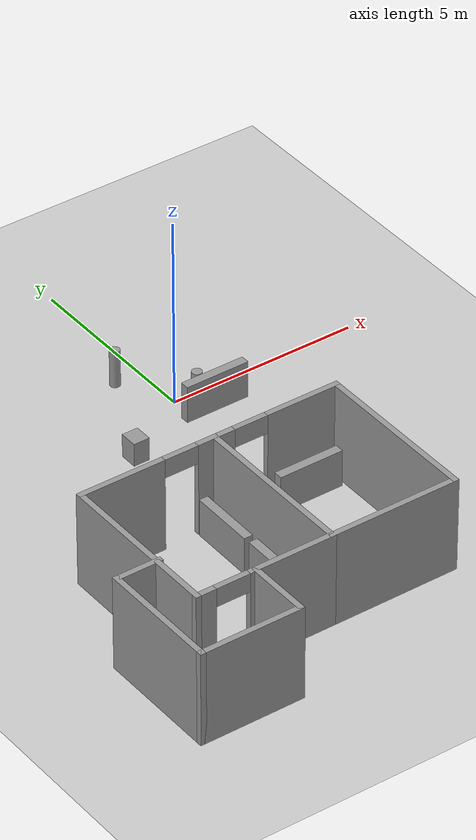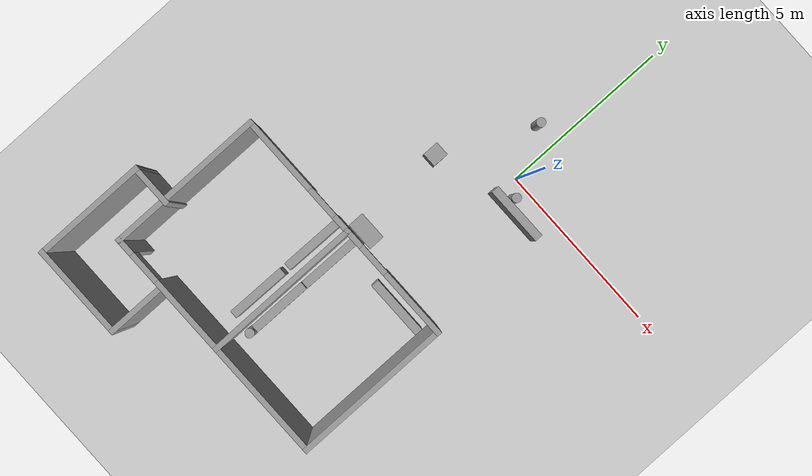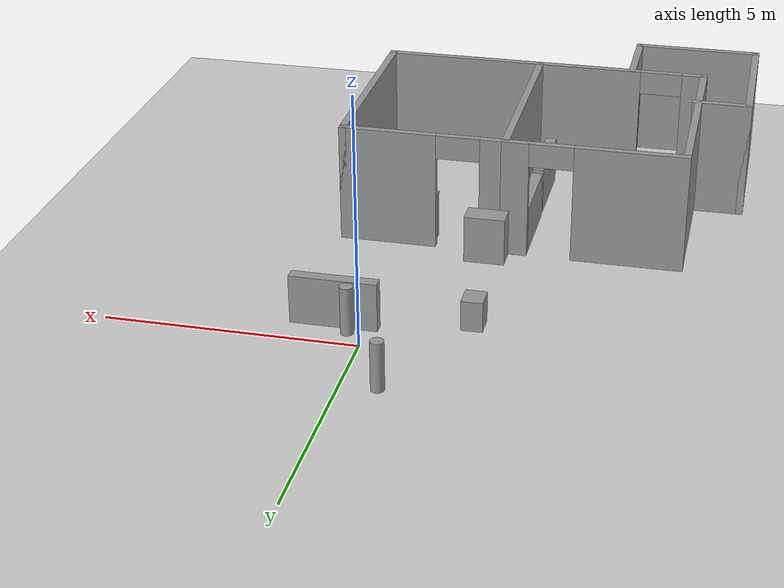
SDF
<sdf version="1.9">
 <world name="default">
  <model name="ground_plane">
   <static>true</static>
   <link name="link">
    <collision name="collision">
     <geometry><plane><normal>0 0 1</normal><size>100 100</size></plane></geometry>
     <surface><friction><ode><mu>100</mu><mu2>50</mu2></ode></friction></surface>
    </collision>
    <visual name="visual">
     <cast_shadows>false</cast_shadows>
     <geometry><plane><normal>0 0 1</normal><size>100 100</size></plane></geometry>
     <material>
      <script><uri>file://media/materials/scripts/gazebo.material</uri><name>Gazebo/Grey</name></script>
     </material>
    </visual>
   </link>
  </model>
  <model name="cma_quartos">
   <pose>-2.58169 -7.2645600000000004 0 0 0 0</pose>
   <link name="Wall_0">
    <collision name="Wall_0_Collision">
     <geometry><box><size>4.5 0.14999999999999999 2.5</size></box></geometry>
     <pose>0 0 1.25 0 0 0</pose>
    </collision>
    <visual name="Wall_0_Visual">
     <pose>0 0 1.25 0 0 0</pose>
     <geometry><box><size>4.5 0.14999999999999999 2.5</size></box></geometry>
     <material>
      <script><uri>file://media/materials/scripts/gazebo.material</uri><name>Gazebo/Grey</name></script>
      <ambient>1 1 1 1</ambient>
     </material>
    </visual>
    <pose>0.64500000000000002 0.81000000000000005 0 0 0 -1.5708</pose>
   </link>
   <link name="Wall_1">
    <pose>-1.155 -1.365 0 0 0 3.1415899999999999</pose>
    <visual name="Wall_1_Visual_0">
     <pose>-0.72250000000000003 0 1.25 0 0 0</pose>
     <geometry><box><size>2.3050000000000002 0.14999999999999999 2.5</size></box></geometry>
     <material>
      <script><uri>file://media/materials/scripts/gazebo.material</uri><name>Gazebo/Grey</name></script>
      <ambient>1 1 1 1</ambient>
     </material>
    </visual>
    <collision name="Wall_1_Collision_0">
     <geometry><box><size>2.3050000000000002 0.14999999999999999 2.5</size></box></geometry>
     <pose>-0.72250000000000003 0 1.25 0 0 0</pose>
    </collision>
    <visual name="Wall_1_Visual_1">
     <pose>1.6025 0 1.25 0 0 0</pose>
     <geometry><box><size>0.54500000000000004 0.14999999999999999 2.5</size></box></geometry>
     <material>
      <script><uri>file://media/materials/scripts/gazebo.material</uri><name>Gazebo/Grey</name></script>
      <ambient>1 1 1 1</ambient>
     </material>
    </visual>
    <collision name="Wall_1_Collision_1">
     <geometry><box><size>0.54500000000000004 0.14999999999999999 2.5</size></box></geometry>
     <pose>1.6025 0 1.25 0 0 0</pose>
    </collision>
    <visual name="Wall_1_Visual_2">
     <pose>0.88 0 2.25 0 0 0</pose>
     <geometry><box><size>0.90000000000000002 0.14999999999999999 0.5</size></box></geometry>
     <material>
      <script><uri>file://media/materials/scripts/gazebo.material</uri><name>Gazebo/Grey</name></script>
      <ambient>1 1 1 1</ambient>
     </material>
    </visual>
    <collision name="Wall_1_Collision_2">
     <geometry><box><size>0.90000000000000002 0.14999999999999999 0.5</size></box></geometry>
     <pose>0.88 0 2.25 0 0 0</pose>
    </collision>
   </link>
   <link name="Wall_10">
    <collision name="Wall_10_Collision">
     <geometry><box><size>1.75 0.14999999999999999 2.5</size></box></geometry>
     <pose>0 0 1.25 0 0 0</pose>
    </collision>
    <visual name="Wall_10_Visual">
     <pose>0 0 1.25 0 0 0</pose>
     <geometry><box><size>1.75 0.14999999999999999 2.5</size></box></geometry>
     <material>
      <script><uri>file://media/materials/scripts/gazebo.material</uri><name>Gazebo/Grey</name></script>
      <ambient>1 1 1 1</ambient>
     </material>
    </visual>
    <pose>-1.395 -2.1850000000000001 0 0 0 -1.5708</pose>
   </link>
   <link name="Wall_11">
    <collision name="Wall_11_Collision">
     <geometry><box><size>2.75 0.14999999999999999 2.5</size></box></geometry>
     <pose>0 0 1.25 0 0 0</pose>
    </collision>
    <visual name="Wall_11_Visual">
     <pose>0 0 1.25 0 0 0</pose>
     <geometry><box><size>2.75 0.14999999999999999 2.5</size></box></geometry>
     <material>
      <script><uri>file://media/materials/scripts/gazebo.material</uri><name>Gazebo/Grey</name></script>
      <ambient>1 1 1 1</ambient>
     </material>
    </visual>
    <pose>-2.6949999999999998 -2.9849999999999999 0 0 0 3.1415899999999999</pose>
   </link>
   <link name="Wall_12">
    <collision name="Wall_12_Collision">
     <geometry><box><size>3.25 0.14999999999999999 2.5</size></box></geometry>
     <pose>0 0 1.25 0 0 0</pose>
    </collision>
    <visual name="Wall_12_Visual">
     <pose>0 0 1.25 0 0 0</pose>
     <geometry><box><size>3.25 0.14999999999999999 2.5</size></box></geometry>
     <material>
      <script><uri>file://media/materials/scripts/gazebo.material</uri><name>Gazebo/Grey</name></script>
      <ambient>1 1 1 1</ambient>
     </material>
    </visual>
    <pose>-3.9950000000000001 -1.4350000000000001 0 0 0 1.5708</pose>
   </link>
   <link name="Wall_13">
    <collision name="Wall_13_Collision">
     <geometry><box><size>1.25 0.14999999999999999 2.5</size></box></geometry>
     <pose>0 0 1.25 0 0 0</pose>
    </collision>
    <visual name="Wall_13_Visual">
     <pose>0 0 1.25 0 0 0</pose>
     <geometry><box><size>1.25 0.14999999999999999 2.5</size></box></geometry>
     <material>
      <script><uri>file://media/materials/scripts/gazebo.material</uri><name>Gazebo/Grey</name></script>
      <ambient>1 1 1 1</ambient>
     </material>
    </visual>
    <pose>-3.4449999999999998 0.115 0 0 0 0</pose>
   </link>
   <link name="Wall_2">
    <collision name="Wall_2_Collision">
     <geometry><box><size>4.5 0.14999999999999999 2.5</size></box></geometry>
     <pose>0 0 1.25 0 0 0</pose>
    </collision>
    <visual name="Wall_2_Visual">
     <pose>0 0 1.25 0 0 0</pose>
     <geometry><box><size>4.5 0.14999999999999999 2.5</size></box></geometry>
     <material>
      <script><uri>file://media/materials/scripts/gazebo.material</uri><name>Gazebo/Grey</name></script>
      <ambient>1 1 1 1</ambient>
     </material>
    </visual>
    <pose>-2.9550000000000001 0.81000000000000005 0 0 0 1.5708</pose>
   </link>
   <link name="Wall_3">
    <pose>-1.155 2.9849999999999999 0 0 0 0</pose>
    <visual name="Wall_3_Visual_0">
     <pose>-0.73250000000000004 0 1.25 0 0 0</pose>
     <geometry><box><size>2.2850000000000001 0.14999999999999999 2.5</size></box></geometry>
     <material>
      <script><uri>file://media/materials/scripts/gazebo.material</uri><name>Gazebo/Grey</name></script>
      <ambient>1 1 1 1</ambient>
     </material>
    </visual>
    <collision name="Wall_3_Collision_0">
     <geometry><box><size>2.2850000000000001 0.14999999999999999 2.5</size></box></geometry>
     <pose>-0.73250000000000004 0 1.25 0 0 0</pose>
    </collision>
    <visual name="Wall_3_Visual_1">
     <pose>1.5925 0 1.25 0 0 0</pose>
     <geometry><box><size>0.56499999999999995 0.14999999999999999 2.5</size></box></geometry>
     <material>
      <script><uri>file://media/materials/scripts/gazebo.material</uri><name>Gazebo/Grey</name></script>
      <ambient>1 1 1 1</ambient>
     </material>
    </visual>
    <collision name="Wall_3_Collision_1">
     <geometry><box><size>0.56499999999999995 0.14999999999999999 2.5</size></box></geometry>
     <pose>1.5925 0 1.25 0 0 0</pose>
    </collision>
    <visual name="Wall_3_Visual_2">
     <pose>0.85999999999999999 0 2.25 0 0 0</pose>
     <geometry><box><size>0.90000000000000002 0.14999999999999999 0.5</size></box></geometry>
     <material>
      <script><uri>file://media/materials/scripts/gazebo.material</uri><name>Gazebo/Grey</name></script>
      <ambient>1 1 1 1</ambient>
     </material>
    </visual>
    <collision name="Wall_3_Collision_2">
     <geometry><box><size>0.90000000000000002 0.14999999999999999 0.5</size></box></geometry>
     <pose>0.85999999999999999 0 2.25 0 0 0</pose>
    </collision>
   </link>
   <link name="Wall_6">
    <pose>2.3199999999999998 2.9849999999999999 0 0 0 0</pose>
    <visual name="Wall_6_Visual_0">
     <pose>-1.4575 0 1.25 0 0 0</pose>
     <geometry><box><size>0.58499999999999996 0.14999999999999999 2.5</size></box></geometry>
     <material>
      <script><uri>file://media/materials/scripts/gazebo.material</uri><name>Gazebo/Grey</name></script>
      <ambient>1 1 1 1</ambient>
     </material>
    </visual>
    <collision name="Wall_6_Collision_0">
     <geometry><box><size>0.58499999999999996 0.14999999999999999 2.5</size></box></geometry>
     <pose>-1.4575 0 1.25 0 0 0</pose>
    </collision>
    <visual name="Wall_6_Visual_1">
     <pose>0.74250000000000005 0 1.25 0 0 0</pose>
     <geometry><box><size>2.0150000000000001 0.14999999999999999 2.5</size></box></geometry>
     <material>
      <script><uri>file://media/materials/scripts/gazebo.material</uri><name>Gazebo/Grey</name></script>
      <ambient>1 1 1 1</ambient>
     </material>
    </visual>
    <collision name="Wall_6_Collision_1">
     <geometry><box><size>2.0150000000000001 0.14999999999999999 2.5</size></box></geometry>
     <pose>0.74250000000000005 0 1.25 0 0 0</pose>
    </collision>
    <visual name="Wall_6_Visual_2">
     <pose>-0.71499999999999997 0 2.25 0 0 0</pose>
     <geometry><box><size>0.90000000000000002 0.14999999999999999 0.5</size></box></geometry>
     <material>
      <script><uri>file://media/materials/scripts/gazebo.material</uri><name>Gazebo/Grey</name></script>
      <ambient>1 1 1 1</ambient>
     </material>
    </visual>
    <collision name="Wall_6_Collision_2">
     <geometry><box><size>0.90000000000000002 0.14999999999999999 0.5</size></box></geometry>
     <pose>-0.71499999999999997 0 2.25 0 0 0</pose>
    </collision>
   </link>
   <link name="Wall_7">
    <collision name="Wall_7_Collision">
     <geometry><box><size>4.5 0.14999999999999999 2.5</size></box></geometry>
     <pose>0 0 1.25 0 0 0</pose>
    </collision>
    <visual name="Wall_7_Visual">
     <pose>0 0 1.25 0 0 0</pose>
     <geometry><box><size>4.5 0.14999999999999999 2.5</size></box></geometry>
     <material>
      <script><uri>file://media/materials/scripts/gazebo.material</uri><name>Gazebo/Grey</name></script>
      <ambient>1 1 1 1</ambient>
     </material>
    </visual>
    <pose>3.9950000000000001 0.81000000000000005 0 0 0 -1.5708</pose>
   </link>
   <link name="Wall_8">
    <collision name="Wall_8_Collision">
     <geometry><box><size>3.5 0.14999999999999999 2.5</size></box></geometry>
     <pose>0 0 1.25 0 0 0</pose>
    </collision>
    <visual name="Wall_8_Visual">
     <pose>0 0 1.25 0 0 0</pose>
     <geometry><box><size>3.5 0.14999999999999999 2.5</size></box></geometry>
     <material>
      <script><uri>file://media/materials/scripts/gazebo.material</uri><name>Gazebo/Grey</name></script>
      <ambient>1 1 1 1</ambient>
     </material>
    </visual>
    <pose>2.3199999999999998 -1.365 0 0 0 3.1415899999999999</pose>
   </link>
   <static>true</static>
  </model>
  <model name="cma_armario">
   <link name="link_0">
    <pose>1.3215699999999999 0.88517800000000002 0.5 0 0 0</pose>
    <inertial>
     <mass>0.40237600000000001</mass>
     <inertia>
      <ixx>0.0353686</ixx>
      <ixy>0</ixy>
      <ixz>0</ixz>
      <iyy>0.13261600000000001</iyy>
      <iyz>0</iyz>
      <izz>0.100922</izz>
     </inertia>
    </inertial>
    <visual name="visual">
     <geometry><box><size>1.7187699999999999 0.234069 1</size></box></geometry>
     <material>
      <lighting>true</lighting>
      <script><uri>file://media/materials/scripts/gazebo.material</uri><name>Gazebo/Grey</name></script>
      <ambient>0.300000012 0.300000012 0.300000012 1</ambient>
      <diffuse>0.699999988 0.699999988 0.699999988 1</diffuse>
      <specular>0.00999999978 0.00999999978 0.00999999978 1</specular>
      <emissive>0 0 0 1</emissive>
     </material>
    </visual>
    <collision name="collision">
     <geometry><box><size>1.7187699999999999 0.234069 1</size></box></geometry>
     <surface>
      <friction>
       <ode><mu>1</mu><mu2>1</mu2><fdir1>0 0 0</fdir1><slip1>0</slip1><slip2>0</slip2></ode>
       <torsional>
        <coefficient>1</coefficient>
        <patch_radius>0</patch_radius>
        <surface_radius>0</surface_radius>
        <use_patch_radius>true</use_patch_radius>
        <ode><slip>0</slip></ode>
       </torsional>
      </friction>
      <bounce><restitution_coefficient>0</restitution_coefficient><threshold>1000000</threshold></bounce>
      <contact>
       <collide_without_contact>false</collide_without_contact>
       <collide_without_contact_bitmask>1</collide_without_contact_bitmask>
       <collide_bitmask>1</collide_bitmask>
       <ode>
        <soft_cfm>0</soft_cfm>
        <soft_erp>0.20000000000000001</soft_erp>
        <kp>10000000000000</kp>
        <kd>1</kd>
        <max_vel>0.01</max_vel>
        <min_depth>0</min_depth>
       </ode>
       <bullet>
        <split_impulse>true</split_impulse>
        <split_impulse_penetration_threshold>-0.01</split_impulse_penetration_threshold>
        <soft_cfm>0</soft_cfm>
        <soft_erp>0.20000000000000001</soft_erp>
        <kp>10000000000000</kp>
        <kd>1</kd>
       </bullet>
      </contact>
     </surface>
    </collision>
   </link>
   <static>false</static>
   <pose>-0.66982399999999997 -1.5824100000000001 1.9999999999999999e-06 -2.0000000000000003e-06 1.0339757656912846e-25 0.00063900000000000014</pose>
  </model>
  <model name="cma_lixo">
   <link name="link_1">
    <pose>0.88296200000000002 1.81586 0.5 0 0 0</pose>
    <inertial>
     <mass>0.068764400000000003</mass>
     <inertia>
      <ixx>0.00602588</ixx>
      <ixy>0</ixy>
      <ixz>0</ixz>
      <iyy>0.00602588</iyy>
      <iyz>0</iyz>
      <izz>0.00059106800000000004</izz>
     </inertia>
    </inertial>
    <visual name="visual">
     <geometry><cylinder><radius>0.13111200000000001</radius><length>1</length></cylinder></geometry>
     <material>
      <lighting>true</lighting>
      <script><uri>file://media/materials/scripts/gazebo.material</uri><name>Gazebo/Grey</name></script>
      <ambient>0.300000012 0.300000012 0.300000012 1</ambient>
      <diffuse>0.699999988 0.699999988 0.699999988 1</diffuse>
      <specular>0.00999999978 0.00999999978 0.00999999978 1</specular>
      <emissive>0 0 0 1</emissive>
     </material>
    </visual>
    <collision name="collision">
     <geometry><cylinder><radius>0.13111200000000001</radius><length>1</length></cylinder></geometry>
     <surface>
      <friction>
       <ode><mu>1</mu><mu2>1</mu2><fdir1>0 0 0</fdir1><slip1>0</slip1><slip2>0</slip2></ode>
       <torsional>
        <coefficient>1</coefficient>
        <patch_radius>0</patch_radius>
        <surface_radius>0</surface_radius>
        <use_patch_radius>true</use_patch_radius>
        <ode><slip>0</slip></ode>
       </torsional>
      </friction>
      <bounce><restitution_coefficient>0</restitution_coefficient><threshold>1000000</threshold></bounce>
      <contact>
       <collide_without_contact>false</collide_without_contact>
       <collide_without_contact_bitmask>1</collide_without_contact_bitmask>
       <collide_bitmask>1</collide_bitmask>
       <ode>
        <soft_cfm>0</soft_cfm>
        <soft_erp>0.20000000000000001</soft_erp>
        <kp>10000000000000</kp>
        <kd>1</kd>
        <max_vel>0.01</max_vel>
        <min_depth>0</min_depth>
       </ode>
       <bullet>
        <split_impulse>true</split_impulse>
        <split_impulse_penetration_threshold>-0.01</split_impulse_penetration_threshold>
        <soft_cfm>0</soft_cfm>
        <soft_erp>0.20000000000000001</soft_erp>
        <kp>10000000000000</kp>
        <kd>1</kd>
       </bullet>
      </contact>
     </surface>
    </collision>
   </link>
   <static>false</static>
   <pose>-1.35785 -1.5254399999999999 -5.0000000000000004e-06 0 0 -0.54309700000000016</pose>
  </model>
  <model name="cma_lixo_0">
   <link name="link_1">
    <pose>0.88296200000000002 1.81586 0.5 0 0 0</pose>
    <inertial>
     <mass>0.068764400000000003</mass>
     <inertia>
      <ixx>0.00602588</ixx>
      <ixy>0</ixy>
      <ixz>0</ixz>
      <iyy>0.00602588</iyy>
      <iyz>0</iyz>
      <izz>0.00059106800000000004</izz>
     </inertia>
    </inertial>
    <visual name="visual">
     <geometry><cylinder><radius>0.13111200000000001</radius><length>1</length></cylinder></geometry>
     <material>
      <lighting>true</lighting>
      <script><uri>file://media/materials/scripts/gazebo.material</uri><name>Gazebo/Grey</name></script>
      <ambient>0.300000012 0.300000012 0.300000012 1</ambient>
      <diffuse>0.699999988 0.699999988 0.699999988 1</diffuse>
      <specular>0.00999999978 0.00999999978 0.00999999978 1</specular>
      <emissive>0 0 0 1</emissive>
     </material>
    </visual>
    <collision name="collision">
     <geometry><cylinder><radius>0.13111200000000001</radius><length>1</length></cylinder></geometry>
     <surface>
      <friction>
       <ode><mu>1</mu><mu2>1</mu2><fdir1>0 0 0</fdir1><slip1>0</slip1><slip2>0</slip2></ode>
       <torsional>
        <coefficient>1</coefficient>
        <patch_radius>0</patch_radius>
        <surface_radius>0</surface_radius>
        <use_patch_radius>true</use_patch_radius>
        <ode><slip>0</slip></ode>
       </torsional>
      </friction>
      <bounce><restitution_coefficient>0</restitution_coefficient><threshold>1000000</threshold></bounce>
      <contact>
       <collide_without_contact>false</collide_without_contact>
       <collide_without_contact_bitmask>1</collide_without_contact_bitmask>
       <collide_bitmask>1</collide_bitmask>
       <ode>
        <soft_cfm>0</soft_cfm>
        <soft_erp>0.20000000000000001</soft_erp>
        <kp>10000000000000</kp>
        <kd>1</kd>
        <max_vel>0.01</max_vel>
        <min_depth>0</min_depth>
       </ode>
       <bullet>
        <split_impulse>true</split_impulse>
        <split_impulse_penetration_threshold>-0.01</split_impulse_penetration_threshold>
        <soft_cfm>0</soft_cfm>
        <soft_erp>0.20000000000000001</soft_erp>
        <kp>10000000000000</kp>
        <kd>1</kd>
       </bullet>
      </contact>
     </surface>
    </collision>
   </link>
   <static>false</static>
   <pose>-1.6093500000000001 -0.44273099999999999 -9.0000000000000002e-06 0 0 -0.0097769999999999992</pose>
  </model>
  <model name="cma_bau_s">
   <link name="link_1">
    <pose>0.109594 0.27229300000000001 0 0 0 0</pose>
    <inertial>
     <mass>0.12547900000000001</mass>
     <inertia>
      <ixx>0.0064194300000000003</ixx>
      <ixy>0</ixy>
      <ixz>0</ixz>
      <iyy>0.0059753999999999996</iyy>
      <iyz>0</iyz>
      <izz>0.0042208499999999999</izz>
     </inertia>
    </inertial>
    <visual name="visual">
     <geometry><box><size>0.42496400000000001 0.47228300000000001 0.62511799999999995</size></box></geometry>
     <material>
      <lighting>true</lighting>
      <script><uri>file://media/materials/scripts/gazebo.material</uri><name>Gazebo/Grey</name></script>
      <ambient>0.300000012 0.300000012 0.300000012 1</ambient>
      <diffuse>0.699999988 0.699999988 0.699999988 1</diffuse>
      <specular>0.00999999978 0.00999999978 0.00999999978 1</specular>
      <emissive>0 0 0 1</emissive>
     </material>
    </visual>
    <collision name="collision">
     <geometry><box><size>0.42496400000000001 0.47228300000000001 0.62511799999999995</size></box></geometry>
     <surface>
      <friction>
       <ode><mu>1</mu><mu2>1</mu2><fdir1>0 0 0</fdir1><slip1>0</slip1><slip2>0</slip2></ode>
       <torsional>
        <coefficient>1</coefficient>
        <patch_radius>0</patch_radius>
        <surface_radius>0</surface_radius>
        <use_patch_radius>true</use_patch_radius>
        <ode><slip>0</slip></ode>
       </torsional>
      </friction>
      <bounce><restitution_coefficient>0</restitution_coefficient><threshold>1000000</threshold></bounce>
      <contact>
       <collide_without_contact>false</collide_without_contact>
       <collide_without_contact_bitmask>1</collide_without_contact_bitmask>
       <collide_bitmask>1</collide_bitmask>
       <ode>
        <soft_cfm>0</soft_cfm>
        <soft_erp>0.20000000000000001</soft_erp>
        <kp>10000000000000</kp>
        <kd>1</kd>
        <max_vel>0.01</max_vel>
        <min_depth>0</min_depth>
       </ode>
       <bullet>
        <split_impulse>true</split_impulse>
        <split_impulse_penetration_threshold>-0.01</split_impulse_penetration_threshold>
        <soft_cfm>0</soft_cfm>
        <soft_erp>0.20000000000000001</soft_erp>
        <kp>10000000000000</kp>
        <kd>1</kd>
       </bullet>
      </contact>
     </surface>
    </collision>
   </link>
   <static>false</static>
   <pose>-2.0428899999999999 -1.4857199999999999 0.31256 -3.9999999999999998e-06 1.2000000000000002e-05 0.00025799999999999993</pose>
  </model>
  <model name="cma_armario_s">
   <link name="link_1">
    <pose>-1.9999999999999999e-06 -3.0000000000000001e-06 0 0 0 0</pose>
    <inertial>
     <mass>0.39015899999999998</mass>
     <inertia>
      <ixx>0.039647000000000002</ixx>
      <ixy>0</ixy>
      <ixz>0</ixz>
      <iyy>0.055070800000000003</iyy>
      <iyz>0</iyz>
      <izz>0.029691200000000001</izz>
     </inertia>
    </inertial>
    <visual name="visual">
     <geometry><box><size>0.83294199999999996 0.46839700000000001 1</size></box></geometry>
     <material>
      <lighting>true</lighting>
      <script><uri>file://media/materials/scripts/gazebo.material</uri><name>Gazebo/Grey</name></script>
      <ambient>0.300000012 0.300000012 0.300000012 1</ambient>
      <diffuse>0.699999988 0.699999988 0.699999988 1</diffuse>
      <specular>0.00999999978 0.00999999978 0.00999999978 1</specular>
      <emissive>0 0 0 1</emissive>
     </material>
    </visual>
    <collision name="collision">
     <geometry><box><size>0.83294199999999996 0.46839700000000001 1</size></box></geometry>
     <surface>
      <friction>
       <ode><mu>1</mu><mu2>1</mu2><fdir1>0 0 0</fdir1><slip1>0</slip1><slip2>0</slip2></ode>
       <torsional>
        <coefficient>1</coefficient>
        <patch_radius>0</patch_radius>
        <surface_radius>0</surface_radius>
        <use_patch_radius>true</use_patch_radius>
        <ode><slip>0</slip></ode>
       </torsional>
      </friction>
      <bounce><restitution_coefficient>0</restitution_coefficient><threshold>1000000</threshold></bounce>
      <contact>
       <collide_without_contact>false</collide_without_contact>
       <collide_without_contact_bitmask>1</collide_without_contact_bitmask>
       <collide_bitmask>1</collide_bitmask>
       <ode>
        <soft_cfm>0</soft_cfm>
        <soft_erp>0.20000000000000001</soft_erp>
        <kp>10000000000000</kp>
        <kd>1</kd>
        <max_vel>0.01</max_vel>
        <min_depth>0</min_depth>
       </ode>
       <bullet>
        <split_impulse>true</split_impulse>
        <split_impulse_penetration_threshold>-0.01</split_impulse_penetration_threshold>
        <soft_cfm>0</soft_cfm>
        <soft_erp>0.20000000000000001</soft_erp>
        <kp>10000000000000</kp>
        <kd>1</kd>
       </bullet>
      </contact>
     </surface>
    </collision>
   </link>
   <static>false</static>
   <pose>-1.6384300000000001 -3.9380000000000002 0.5 4.0000000000000007e-06 -3.0000000000000005e-06 9.7000000000000013e-05</pose>
  </model>
  <model name="cma_armario_2">
   <link name="link_0">
    <pose>1.3215699999999999 0.88517800000000002 0.5 0 0 0</pose>
    <inertial>
     <mass>0.40237600000000001</mass>
     <inertia>
      <ixx>0.0353686</ixx>
      <ixy>0</ixy>
      <ixz>0</ixz>
      <iyy>0.13261600000000001</iyy>
      <iyz>0</iyz>
      <izz>0.100922</izz>
     </inertia>
    </inertial>
    <visual name="visual">
     <geometry><box><size>1.7187699999999999 0.234069 1</size></box></geometry>
     <material>
      <lighting>true</lighting>
      <script><uri>file://media/materials/scripts/gazebo.material</uri><name>Gazebo/Grey</name></script>
      <ambient>0.300000012 0.300000012 0.300000012 1</ambient>
      <diffuse>0.699999988 0.699999988 0.699999988 1</diffuse>
      <specular>0.00999999978 0.00999999978 0.00999999978 1</specular>
      <emissive>0 0 0 1</emissive>
     </material>
    </visual>
    <collision name="collision">
     <geometry><box><size>1.7187699999999999 0.234069 1</size></box></geometry>
     <surface>
      <friction>
       <ode><mu>1</mu><mu2>1</mu2><fdir1>0 0 0</fdir1><slip1>0</slip1><slip2>0</slip2></ode>
       <torsional>
        <coefficient>1</coefficient>
        <patch_radius>0</patch_radius>
        <surface_radius>0</surface_radius>
        <use_patch_radius>true</use_patch_radius>
        <ode><slip>0</slip></ode>
       </torsional>
      </friction>
      <bounce><restitution_coefficient>0</restitution_coefficient><threshold>1000000</threshold></bounce>
      <contact>
       <collide_without_contact>false</collide_without_contact>
       <collide_without_contact_bitmask>1</collide_without_contact_bitmask>
       <collide_bitmask>1</collide_bitmask>
       <ode>
        <soft_cfm>0</soft_cfm>
        <soft_erp>0.20000000000000001</soft_erp>
        <kp>10000000000000</kp>
        <kd>1</kd>
        <max_vel>0.01</max_vel>
        <min_depth>0</min_depth>
       </ode>
       <bullet>
        <split_impulse>true</split_impulse>
        <split_impulse_penetration_threshold>-0.01</split_impulse_penetration_threshold>
        <soft_cfm>0</soft_cfm>
        <soft_erp>0.20000000000000001</soft_erp>
        <kp>10000000000000</kp>
        <kd>1</kd>
       </bullet>
      </contact>
     </surface>
    </collision>
   </link>
   <static>false</static>
   <pose>-1.44251 -6.5632900000000003 0 0 0 1.5627500000000001</pose>
  </model>
  <model name="cma_armario_2_clone">
   <link name="link_0">
    <pose>1.3215699999999999 0.88517800000000002 0.5 0 0 0</pose>
    <inertial>
     <mass>0.40237600000000001</mass>
     <inertia>
      <ixx>0.0353686</ixx>
      <ixy>0</ixy>
      <ixz>0</ixz>
      <iyy>0.13261600000000001</iyy>
      <iyz>0</iyz>
      <izz>0.100922</izz>
     </inertia>
    </inertial>
    <visual name="visual">
     <geometry><box><size>1.7187699999999999 0.234069 1</size></box></geometry>
     <material>
      <lighting>true</lighting>
      <script><uri>file://media/materials/scripts/gazebo.material</uri><name>Gazebo/Grey</name></script>
      <ambient>0.300000012 0.300000012 0.300000012 1</ambient>
      <diffuse>0.699999988 0.699999988 0.699999988 1</diffuse>
      <specular>0.00999999978 0.00999999978 0.00999999978 1</specular>
      <emissive>0 0 0 1</emissive>
     </material>
    </visual>
    <collision name="collision">
     <geometry><box><size>1.7187699999999999 0.234069 1</size></box></geometry>
     <surface>
      <friction>
       <ode><mu>1</mu><mu2>1</mu2><fdir1>0 0 0</fdir1><slip1>0</slip1><slip2>0</slip2></ode>
       <torsional>
        <coefficient>1</coefficient>
        <patch_radius>0</patch_radius>
        <surface_radius>0</surface_radius>
        <use_patch_radius>true</use_patch_radius>
        <ode><slip>0</slip></ode>
       </torsional>
      </friction>
      <bounce><restitution_coefficient>0</restitution_coefficient><threshold>1000000</threshold></bounce>
      <contact>
       <collide_without_contact>false</collide_without_contact>
       <collide_without_contact_bitmask>1</collide_without_contact_bitmask>
       <collide_bitmask>1</collide_bitmask>
       <ode>
        <soft_cfm>0</soft_cfm>
        <soft_erp>0.20000000000000001</soft_erp>
        <kp>10000000000000</kp>
        <kd>1</kd>
        <max_vel>0.01</max_vel>
        <min_depth>0</min_depth>
       </ode>
       <bullet>
        <split_impulse>true</split_impulse>
        <split_impulse_penetration_threshold>-0.01</split_impulse_penetration_threshold>
        <soft_cfm>0</soft_cfm>
        <soft_erp>0.20000000000000001</soft_erp>
        <kp>10000000000000</kp>
        <kd>1</kd>
       </bullet>
      </contact>
     </surface>
    </collision>
   </link>
   <static>false</static>
   <pose>-1.4490499999999999 -8.4461999999999993 0 0 0 1.5627500000000001</pose>
  </model>
  <model name="cma_armario_3">
   <link name="link_0">
    <pose>1.3215699999999999 0.88517800000000002 0.5 0 0 0</pose>
    <inertial>
     <mass>0.40237600000000001</mass>
     <inertia>
      <ixx>0.0353686</ixx>
      <ixy>0</ixy>
      <ixz>0</ixz>
      <iyy>0.13261600000000001</iyy>
      <iyz>0</iyz>
      <izz>0.100922</izz>
     </inertia>
    </inertial>
    <visual name="visual">
     <geometry><box><size>1.7187699999999999 0.234069 1</size></box></geometry>
     <material>
      <lighting>true</lighting>
      <script><uri>file://media/materials/scripts/gazebo.material</uri><name>Gazebo/Grey</name></script>
      <ambient>0.300000012 0.300000012 0.300000012 1</ambient>
      <diffuse>0.699999988 0.699999988 0.699999988 1</diffuse>
      <specular>0.00999999978 0.00999999978 0.00999999978 1</specular>
      <emissive>0 0 0 1</emissive>
     </material>
    </visual>
    <collision name="collision">
     <geometry><box><size>1.7187699999999999 0.234069 1</size></box></geometry>
     <surface>
      <friction>
       <ode><mu>1</mu><mu2>1</mu2><fdir1>0 0 0</fdir1><slip1>0</slip1><slip2>0</slip2></ode>
       <torsional>
        <coefficient>1</coefficient>
        <patch_radius>0</patch_radius>
        <surface_radius>0</surface_radius>
        <use_patch_radius>true</use_patch_radius>
        <ode><slip>0</slip></ode>
       </torsional>
      </friction>
      <bounce><restitution_coefficient>0</restitution_coefficient><threshold>1000000</threshold></bounce>
      <contact>
       <collide_without_contact>false</collide_without_contact>
       <collide_without_contact_bitmask>1</collide_without_contact_bitmask>
       <collide_bitmask>1</collide_bitmask>
       <ode>
        <soft_cfm>0</soft_cfm>
        <soft_erp>0.20000000000000001</soft_erp>
        <kp>10000000000000</kp>
        <kd>1</kd>
        <max_vel>0.01</max_vel>
        <min_depth>0</min_depth>
       </ode>
       <bullet>
        <split_impulse>true</split_impulse>
        <split_impulse_penetration_threshold>-0.01</split_impulse_penetration_threshold>
        <soft_cfm>0</soft_cfm>
        <soft_erp>0.20000000000000001</soft_erp>
        <kp>10000000000000</kp>
        <kd>1</kd>
       </bullet>
      </contact>
     </surface>
    </collision>
   </link>
   <static>false</static>
   <pose>-0.94074100000000005 -5.5561800000000003 0 0 0 -0.0011500000000000002</pose>
  </model>
  <model name="cma_armario_4">
   <link name="link_0">
    <pose>1.3215699999999999 0.88517800000000002 0.5 0 0 0</pose>
    <inertial>
     <mass>0.40237600000000001</mass>
     <inertia>
      <ixx>0.0353686</ixx>
      <ixy>0</ixy>
      <ixz>0</ixz>
      <iyy>0.13261600000000001</iyy>
      <iyz>0</iyz>
      <izz>0.100922</izz>
     </inertia>
    </inertial>
    <visual name="visual">
     <geometry><box><size>1.7187699999999999 0.234069 1</size></box></geometry>
     <material>
      <lighting>true</lighting>
      <script><uri>file://media/materials/scripts/gazebo.material</uri><name>Gazebo/Grey</name></script>
      <ambient>0.300000012 0.300000012 0.300000012 1</ambient>
      <diffuse>0.699999988 0.699999988 0.699999988 1</diffuse>
      <specular>0.00999999978 0.00999999978 0.00999999978 1</specular>
      <emissive>0 0 0 1</emissive>
     </material>
    </visual>
    <collision name="collision">
     <geometry><box><size>1.7187699999999999 0.234069 1</size></box></geometry>
     <surface>
      <friction>
       <ode><mu>1</mu><mu2>1</mu2><fdir1>0 0 0</fdir1><slip1>0</slip1><slip2>0</slip2></ode>
       <torsional>
        <coefficient>1</coefficient>
        <patch_radius>0</patch_radius>
        <surface_radius>0</surface_radius>
        <use_patch_radius>true</use_patch_radius>
        <ode><slip>0</slip></ode>
       </torsional>
      </friction>
      <bounce><restitution_coefficient>0</restitution_coefficient><threshold>1000000</threshold></bounce>
      <contact>
       <collide_without_contact>false</collide_without_contact>
       <collide_without_contact_bitmask>1</collide_without_contact_bitmask>
       <collide_bitmask>1</collide_bitmask>
       <ode>
        <soft_cfm>0</soft_cfm>
        <soft_erp>0.20000000000000001</soft_erp>
        <kp>10000000000000</kp>
        <kd>1</kd>
        <max_vel>0.01</max_vel>
        <min_depth>0</min_depth>
       </ode>
       <bullet>
        <split_impulse>true</split_impulse>
        <split_impulse_penetration_threshold>-0.01</split_impulse_penetration_threshold>
        <soft_cfm>0</soft_cfm>
        <soft_erp>0.20000000000000001</soft_erp>
        <kp>10000000000000</kp>
        <kd>1</kd>
       </bullet>
      </contact>
     </surface>
    </collision>
   </link>
   <static>false</static>
   <pose>-0.78505599999999998 -6.5470199999999998 9.9999999999999995e-07 -1.9999999999999999e-06 0 1.56227</pose>
  </model>
  <model name="cma_armario_5">
   <link name="link_0">
    <pose>1.3215699999999999 0.88517800000000002 0.5 0 0 0</pose>
    <inertial>
     <mass>0.40237600000000001</mass>
     <inertia>
      <ixx>0.0353686</ixx>
      <ixy>0</ixy>
      <ixz>0</ixz>
      <iyy>0.13261600000000001</iyy>
      <iyz>0</iyz>
      <izz>0.100922</izz>
     </inertia>
    </inertial>
    <visual name="visual">
     <geometry><box><size>1.7187699999999999 0.234069 1</size></box></geometry>
     <material>
      <lighting>true</lighting>
      <script><uri>file://media/materials/scripts/gazebo.material</uri><name>Gazebo/Grey</name></script>
      <ambient>0.300000012 0.300000012 0.300000012 1</ambient>
      <diffuse>0.699999988 0.699999988 0.699999988 1</diffuse>
      <specular>0.00999999978 0.00999999978 0.00999999978 1</specular>
      <emissive>0 0 0 1</emissive>
     </material>
    </visual>
    <collision name="collision">
     <geometry><box><size>1.7187699999999999 0.234069 1</size></box></geometry>
     <surface>
      <friction>
       <ode><mu>1</mu><mu2>1</mu2><fdir1>0 0 0</fdir1><slip1>0</slip1><slip2>0</slip2></ode>
       <torsional>
        <coefficient>1</coefficient>
        <patch_radius>0</patch_radius>
        <surface_radius>0</surface_radius>
        <use_patch_radius>true</use_patch_radius>
        <ode><slip>0</slip></ode>
       </torsional>
      </friction>
      <bounce><restitution_coefficient>0</restitution_coefficient><threshold>1000000</threshold></bounce>
      <contact>
       <collide_without_contact>false</collide_without_contact>
       <collide_without_contact_bitmask>1</collide_without_contact_bitmask>
       <collide_bitmask>1</collide_bitmask>
       <ode>
        <soft_cfm>0</soft_cfm>
        <soft_erp>0.20000000000000001</soft_erp>
        <kp>10000000000000</kp>
        <kd>1</kd>
        <max_vel>0.01</max_vel>
        <min_depth>0</min_depth>
       </ode>
       <bullet>
        <split_impulse>true</split_impulse>
        <split_impulse_penetration_threshold>-0.01</split_impulse_penetration_threshold>
        <soft_cfm>0</soft_cfm>
        <soft_erp>0.20000000000000001</soft_erp>
        <kp>10000000000000</kp>
        <kd>1</kd>
       </bullet>
      </contact>
     </surface>
    </collision>
   </link>
   <static>false</static>
   <pose>-0.79357900000000003 -8.2781800000000008 9.9999999999999995e-07 -1.9999999999999999e-06 0 1.5669099999999998</pose>
  </model>
  <model name="cma_lixo_1">
   <link name="link_1">
    <pose>0.88296200000000002 1.81586 0.5 0 0 0</pose>
    <inertial>
     <mass>0.068764400000000003</mass>
     <inertia>
      <ixx>0.00602588</ixx>
      <ixy>0</ixy>
      <ixz>0</ixz>
      <iyy>0.00602588</iyy>
      <iyz>0</iyz>
      <izz>0.00059106800000000004</izz>
     </inertia>
    </inertial>
    <visual name="visual">
     <geometry><cylinder><radius>0.13111200000000001</radius><length>1</length></cylinder></geometry>
     <material>
      <lighting>true</lighting>
      <script><uri>file://media/materials/scripts/gazebo.material</uri><name>Gazebo/Grey</name></script>
      <ambient>0.300000012 0.300000012 0.300000012 1</ambient>
      <diffuse>0.699999988 0.699999988 0.699999988 1</diffuse>
      <specular>0.00999999978 0.00999999978 0.00999999978 1</specular>
      <emissive>0 0 0 1</emissive>
     </material>
    </visual>
    <collision name="collision">
     <geometry><cylinder><radius>0.13111200000000001</radius><length>1</length></cylinder></geometry>
     <surface>
      <friction>
       <ode><mu>1</mu><mu2>1</mu2><fdir1>0 0 0</fdir1><slip1>0</slip1><slip2>0</slip2></ode>
       <torsional>
        <coefficient>1</coefficient>
        <patch_radius>0</patch_radius>
        <surface_radius>0</surface_radius>
        <use_patch_radius>true</use_patch_radius>
        <ode><slip>0</slip></ode>
       </torsional>
      </friction>
      <bounce><restitution_coefficient>0</restitution_coefficient><threshold>1000000</threshold></bounce>
      <contact>
       <collide_without_contact>false</collide_without_contact>
       <collide_without_contact_bitmask>1</collide_without_contact_bitmask>
       <collide_bitmask>1</collide_bitmask>
       <ode>
        <soft_cfm>0</soft_cfm>
        <soft_erp>0.20000000000000001</soft_erp>
        <kp>10000000000000</kp>
        <kd>1</kd>
        <max_vel>0.01</max_vel>
        <min_depth>0</min_depth>
       </ode>
       <bullet>
        <split_impulse>true</split_impulse>
        <split_impulse_penetration_threshold>-0.01</split_impulse_penetration_threshold>
        <soft_cfm>0</soft_cfm>
        <soft_erp>0.20000000000000001</soft_erp>
        <kp>10000000000000</kp>
        <kd>1</kd>
       </bullet>
      </contact>
     </surface>
    </collision>
   </link>
   <static>false</static>
   <pose>-2.5710299999999999 -9.7974999999999994 -9.9999999999999995e-07 0 0 0</pose>
  </model>
 </world>
</sdf>
